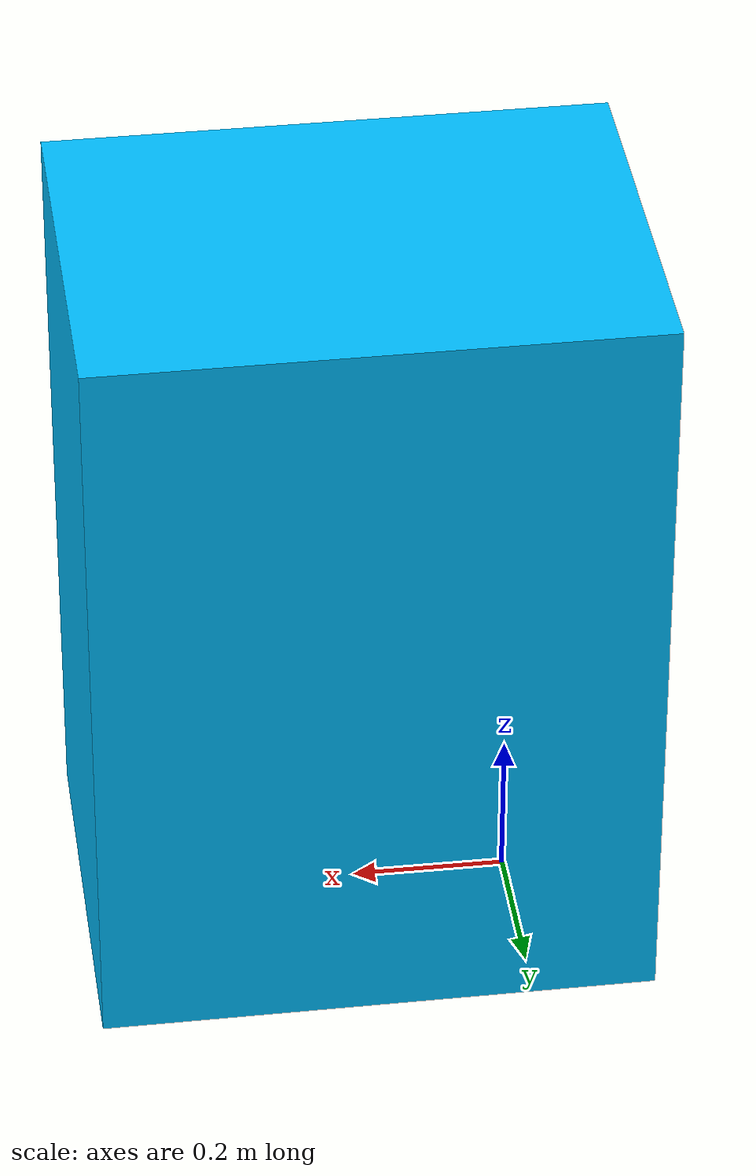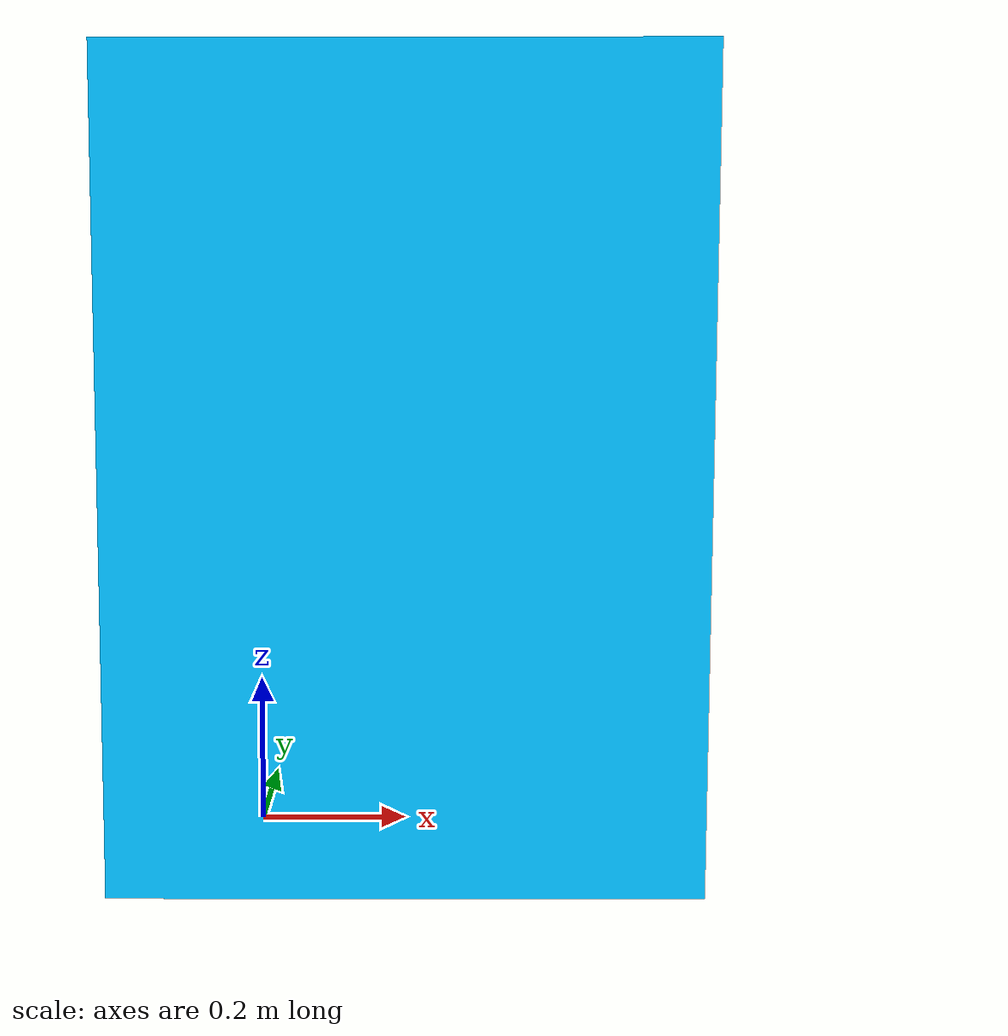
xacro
<?xml version="1.0"?>
<robot xmlns:xacro="http://ros.org/wiki/xacro">

  <!-- load parameter -->
  <xacro:property name="vehicle_info" value="${xacro.load_yaml('$(find sparrow_description)/config/vehicle_info.param.yaml')}"/>

  <!-- vehicle body -->
  <link name="base_link">
    <visual>
      <origin xyz="0.2 0 0.505" rpy="0 0 0"/>
      <geometry>
        <box size="0.72 0.53 1.01"/>
      </geometry>
      <material name="blue">
        <color rgba="0 0.746 1 1"/>
      </material>
    </visual>
  </link>

</robot>
